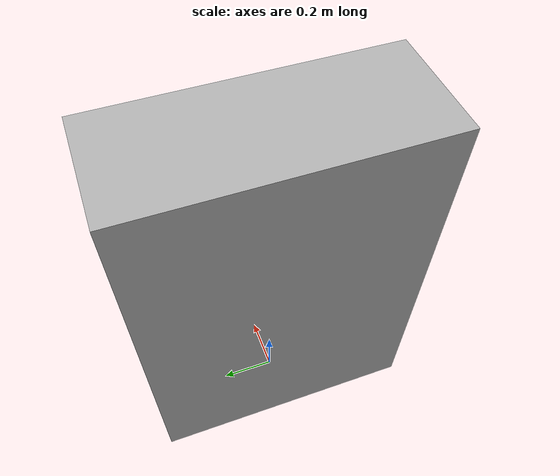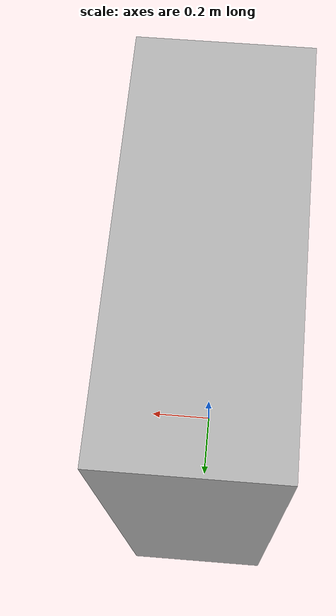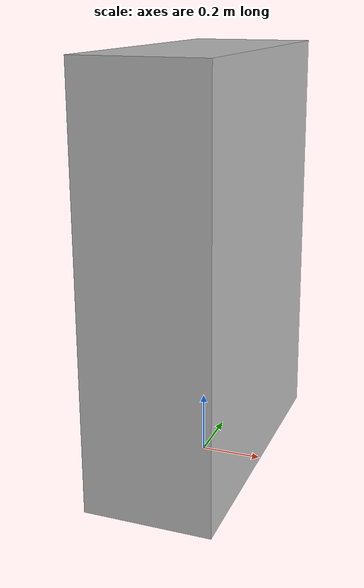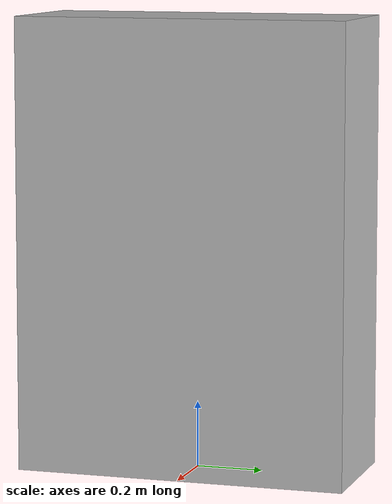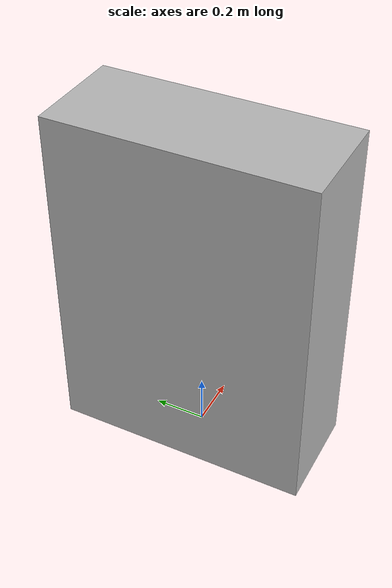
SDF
<?xml version="1.0"?>
<sdf version="1.6">
  <model name="rwc2017/cabinet_showcase">
    <link name="1_link">
      <collision name="1_col">
        <geometry>
          <box>
            <size>0.41 1.0 1.36</size>
          </box>
        </geometry>
      </collision>
      <visual name="1_vis">
        <geometry>
          <box>
            <size>0.41 1.0 1.36</size>
          </box>
        </geometry>
      </visual>
      <pose>0 0 0.68 0 0 0</pose>
    </link>
    <link name="on_top_of">
      <virtual_volume name="on_top_of_vv">
        <geometry>
          <box>
            <size>0.35 0.94 0.25</size>
          </box>
        </geometry>
        <pose>0.0 0.0 1.505 0 0 0</pose>
      </virtual_volume>
    </link>
    <link name="in_front_of">
      <virtual_volume name="in_front_of_vv">
        <geometry>
          <box>
            <size>0.2 0.8 0.01</size>
          </box>
        </geometry>
        <pose>0.705 0.0 0.005 0 0 0</pose>
      </virtual_volume>
    </link>
    <static>true</static>
  </model>
</sdf>
